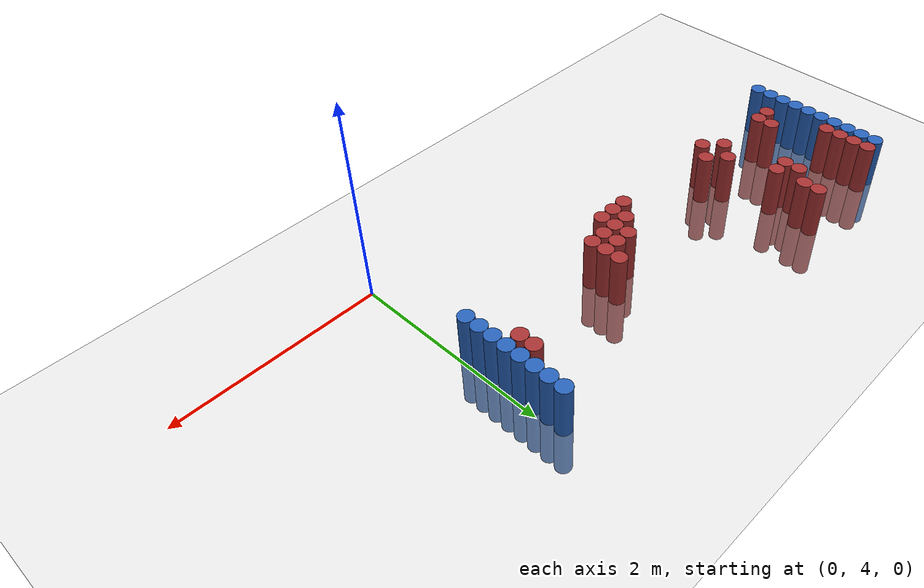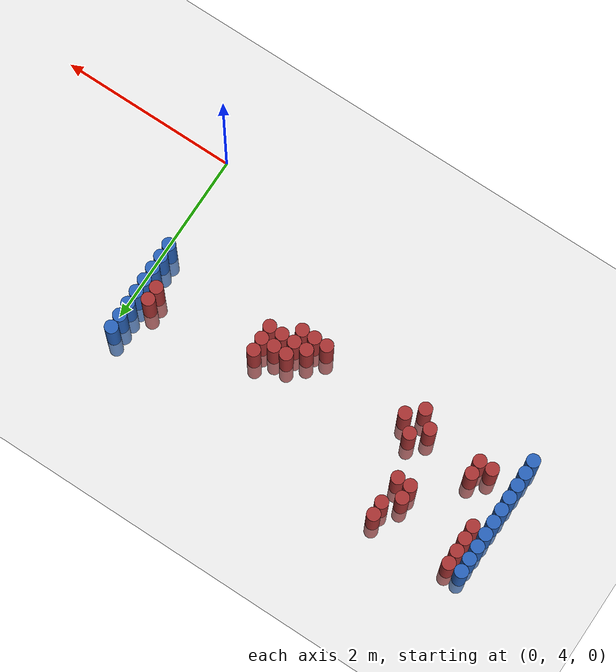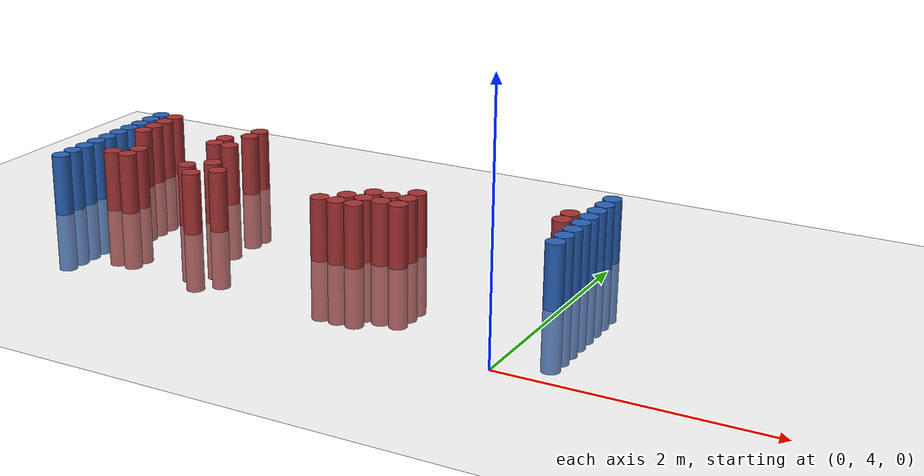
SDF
<sdf version="1.6">
 <world name="default">
  <model name="ground_plane">
   <static>1</static>
   <link name="link">
    <collision name="collision">
     <geometry><plane><normal>0 0 1</normal><size>100 100</size></plane></geometry>
     <surface><friction><ode><mu>100</mu><mu2>50</mu2></ode></friction></surface>
    </collision>
    <visual name="visual">
     <cast_shadows>0</cast_shadows>
     <geometry><plane><normal>0 0 1</normal><size>100 100</size></plane></geometry>
     <material>
      <script><uri>file://media/materials/scripts/gazebo.material</uri><name>Gazebo/Grey</name></script>
     </material>
    </visual>
   </link>
  </model>
  <model name="unit_cylinder_95">
   <static>1</static>
   <pose>-4.425000 5.025000 0.000000 0.000000 0.000000 0.000000</pose>
   <link name="link">
    <inertial>
     <mass>1</mass>
     <inertia><ixx>0.145833</ixx><ixy>0</ixy><ixz>0</ixz><iyy>0.145833</iyy><iyz>0</iyz><izz>0.125</izz></inertia>
    </inertial>
    <collision name="collision">
     <geometry><cylinder><radius>0.075000</radius><length>1</length></cylinder></geometry>
    </collision>
    <visual name="visual">
     <geometry><cylinder><radius>0.075000</radius><length>1</length></cylinder></geometry>
     <material>
      <ambient>0.152000 0.379000 0.720000 1</ambient>
      <diffuse>0.152000 0.379000 0.720000 1</diffuse>
     </material>
     <material>
      <script><name>Gazebo/Grey</name><uri>file://media/materials/scripts/gazebo.material</uri></script>
     </material>
    </visual>
   </link>
  </model>
  <model name="unit_cylinder_96">
   <static>1</static>
   <pose>-4.425000 5.175000 0.000000 0.000000 0.000000 0.000000</pose>
   <link name="link">
    <inertial>
     <mass>1</mass>
     <inertia><ixx>0.145833</ixx><ixy>0</ixy><ixz>0</ixz><iyy>0.145833</iyy><iyz>0</iyz><izz>0.125</izz></inertia>
    </inertial>
    <collision name="collision">
     <geometry><cylinder><radius>0.075000</radius><length>1</length></cylinder></geometry>
    </collision>
    <visual name="visual">
     <geometry><cylinder><radius>0.075000</radius><length>1</length></cylinder></geometry>
     <material>
      <ambient>0.152000 0.379000 0.720000 1</ambient>
      <diffuse>0.152000 0.379000 0.720000 1</diffuse>
     </material>
     <material>
      <script><name>Gazebo/Grey</name><uri>file://media/materials/scripts/gazebo.material</uri></script>
     </material>
    </visual>
   </link>
  </model>
  <model name="unit_cylinder_97">
   <static>1</static>
   <pose>-4.425000 5.325000 0.000000 0.000000 0.000000 0.000000</pose>
   <link name="link">
    <inertial>
     <mass>1</mass>
     <inertia><ixx>0.145833</ixx><ixy>0</ixy><ixz>0</ixz><iyy>0.145833</iyy><iyz>0</iyz><izz>0.125</izz></inertia>
    </inertial>
    <collision name="collision">
     <geometry><cylinder><radius>0.075000</radius><length>1</length></cylinder></geometry>
    </collision>
    <visual name="visual">
     <geometry><cylinder><radius>0.075000</radius><length>1</length></cylinder></geometry>
     <material>
      <ambient>0.152000 0.379000 0.720000 1</ambient>
      <diffuse>0.152000 0.379000 0.720000 1</diffuse>
     </material>
     <material>
      <script><name>Gazebo/Grey</name><uri>file://media/materials/scripts/gazebo.material</uri></script>
     </material>
    </visual>
   </link>
  </model>
  <model name="unit_cylinder_98">
   <static>1</static>
   <pose>-4.425000 5.475000 0.000000 0.000000 0.000000 0.000000</pose>
   <link name="link">
    <inertial>
     <mass>1</mass>
     <inertia><ixx>0.145833</ixx><ixy>0</ixy><ixz>0</ixz><iyy>0.145833</iyy><iyz>0</iyz><izz>0.125</izz></inertia>
    </inertial>
    <collision name="collision">
     <geometry><cylinder><radius>0.075000</radius><length>1</length></cylinder></geometry>
    </collision>
    <visual name="visual">
     <geometry><cylinder><radius>0.075000</radius><length>1</length></cylinder></geometry>
     <material>
      <ambient>0.152000 0.379000 0.720000 1</ambient>
      <diffuse>0.152000 0.379000 0.720000 1</diffuse>
     </material>
     <material>
      <script><name>Gazebo/Grey</name><uri>file://media/materials/scripts/gazebo.material</uri></script>
     </material>
    </visual>
   </link>
  </model>
  <model name="unit_cylinder_99">
   <static>1</static>
   <pose>-4.425000 5.625000 0.000000 0.000000 0.000000 0.000000</pose>
   <link name="link">
    <inertial>
     <mass>1</mass>
     <inertia><ixx>0.145833</ixx><ixy>0</ixy><ixz>0</ixz><iyy>0.145833</iyy><iyz>0</iyz><izz>0.125</izz></inertia>
    </inertial>
    <collision name="collision">
     <geometry><cylinder><radius>0.075000</radius><length>1</length></cylinder></geometry>
    </collision>
    <visual name="visual">
     <geometry><cylinder><radius>0.075000</radius><length>1</length></cylinder></geometry>
     <material>
      <ambient>0.152000 0.379000 0.720000 1</ambient>
      <diffuse>0.152000 0.379000 0.720000 1</diffuse>
     </material>
     <material>
      <script><name>Gazebo/Grey</name><uri>file://media/materials/scripts/gazebo.material</uri></script>
     </material>
    </visual>
   </link>
  </model>
  <model name="unit_cylinder_100">
   <static>1</static>
   <pose>-4.425000 5.775000 0.000000 0.000000 0.000000 0.000000</pose>
   <link name="link">
    <inertial>
     <mass>1</mass>
     <inertia><ixx>0.145833</ixx><ixy>0</ixy><ixz>0</ixz><iyy>0.145833</iyy><iyz>0</iyz><izz>0.125</izz></inertia>
    </inertial>
    <collision name="collision">
     <geometry><cylinder><radius>0.075000</radius><length>1</length></cylinder></geometry>
    </collision>
    <visual name="visual">
     <geometry><cylinder><radius>0.075000</radius><length>1</length></cylinder></geometry>
     <material>
      <ambient>0.152000 0.379000 0.720000 1</ambient>
      <diffuse>0.152000 0.379000 0.720000 1</diffuse>
     </material>
     <material>
      <script><name>Gazebo/Grey</name><uri>file://media/materials/scripts/gazebo.material</uri></script>
     </material>
    </visual>
   </link>
  </model>
  <model name="unit_cylinder_101">
   <static>1</static>
   <pose>-4.425000 5.925000 0.000000 0.000000 0.000000 0.000000</pose>
   <link name="link">
    <inertial>
     <mass>1</mass>
     <inertia><ixx>0.145833</ixx><ixy>0</ixy><ixz>0</ixz><iyy>0.145833</iyy><iyz>0</iyz><izz>0.125</izz></inertia>
    </inertial>
    <collision name="collision">
     <geometry><cylinder><radius>0.075000</radius><length>1</length></cylinder></geometry>
    </collision>
    <visual name="visual">
     <geometry><cylinder><radius>0.075000</radius><length>1</length></cylinder></geometry>
     <material>
      <ambient>0.152000 0.379000 0.720000 1</ambient>
      <diffuse>0.152000 0.379000 0.720000 1</diffuse>
     </material>
     <material>
      <script><name>Gazebo/Grey</name><uri>file://media/materials/scripts/gazebo.material</uri></script>
     </material>
    </visual>
   </link>
  </model>
  <model name="unit_cylinder_102">
   <static>1</static>
   <pose>-4.425000 6.075000 0.000000 0.000000 0.000000 0.000000</pose>
   <link name="link">
    <inertial>
     <mass>1</mass>
     <inertia><ixx>0.145833</ixx><ixy>0</ixy><ixz>0</ixz><iyy>0.145833</iyy><iyz>0</iyz><izz>0.125</izz></inertia>
    </inertial>
    <collision name="collision">
     <geometry><cylinder><radius>0.075000</radius><length>1</length></cylinder></geometry>
    </collision>
    <visual name="visual">
     <geometry><cylinder><radius>0.075000</radius><length>1</length></cylinder></geometry>
     <material>
      <ambient>0.152000 0.379000 0.720000 1</ambient>
      <diffuse>0.152000 0.379000 0.720000 1</diffuse>
     </material>
     <material>
      <script><name>Gazebo/Grey</name><uri>file://media/materials/scripts/gazebo.material</uri></script>
     </material>
    </visual>
   </link>
  </model>
  <model name="unit_cylinder_103">
   <static>1</static>
   <pose>-4.425000 6.225000 0.000000 0.000000 0.000000 0.000000</pose>
   <link name="link">
    <inertial>
     <mass>1</mass>
     <inertia><ixx>0.145833</ixx><ixy>0</ixy><ixz>0</ixz><iyy>0.145833</iyy><iyz>0</iyz><izz>0.125</izz></inertia>
    </inertial>
    <collision name="collision">
     <geometry><cylinder><radius>0.075000</radius><length>1</length></cylinder></geometry>
    </collision>
    <visual name="visual">
     <geometry><cylinder><radius>0.075000</radius><length>1</length></cylinder></geometry>
     <material>
      <ambient>0.152000 0.379000 0.720000 1</ambient>
      <diffuse>0.152000 0.379000 0.720000 1</diffuse>
     </material>
     <material>
      <script><name>Gazebo/Grey</name><uri>file://media/materials/scripts/gazebo.material</uri></script>
     </material>
    </visual>
   </link>
  </model>
  <model name="unit_cylinder_104">
   <static>1</static>
   <pose>-4.425000 6.375000 0.000000 0.000000 0.000000 0.000000</pose>
   <link name="link">
    <inertial>
     <mass>1</mass>
     <inertia><ixx>0.145833</ixx><ixy>0</ixy><ixz>0</ixz><iyy>0.145833</iyy><iyz>0</iyz><izz>0.125</izz></inertia>
    </inertial>
    <collision name="collision">
     <geometry><cylinder><radius>0.075000</radius><length>1</length></cylinder></geometry>
    </collision>
    <visual name="visual">
     <geometry><cylinder><radius>0.075000</radius><length>1</length></cylinder></geometry>
     <material>
      <ambient>0.152000 0.379000 0.720000 1</ambient>
      <diffuse>0.152000 0.379000 0.720000 1</diffuse>
     </material>
     <material>
      <script><name>Gazebo/Grey</name><uri>file://media/materials/scripts/gazebo.material</uri></script>
     </material>
    </visual>
   </link>
  </model>
  <model name="unit_cylinder_126">
   <static>1</static>
   <pose>-4.275000 5.925000 0.000000 0.000000 0.000000 0.000000</pose>
   <link name="link">
    <inertial>
     <mass>1</mass>
     <inertia><ixx>0.145833</ixx><ixy>0</ixy><ixz>0</ixz><iyy>0.145833</iyy><iyz>0</iyz><izz>0.125</izz></inertia>
    </inertial>
    <collision name="collision">
     <geometry><cylinder><radius>0.075000</radius><length>1</length></cylinder></geometry>
    </collision>
    <visual name="visual">
     <geometry><cylinder><radius>0.075000</radius><length>1</length></cylinder></geometry>
     <material>
      <ambient>0.648000 0.192000 0.192000 1</ambient>
      <diffuse>0.648000 0.192000 0.192000 1</diffuse>
     </material>
     <material>
      <script><name>Gazebo/Grey</name><uri>file://media/materials/scripts/gazebo.material</uri></script>
     </material>
    </visual>
   </link>
  </model>
  <model name="unit_cylinder_127">
   <static>1</static>
   <pose>-4.275000 6.075000 0.000000 0.000000 0.000000 0.000000</pose>
   <link name="link">
    <inertial>
     <mass>1</mass>
     <inertia><ixx>0.145833</ixx><ixy>0</ixy><ixz>0</ixz><iyy>0.145833</iyy><iyz>0</iyz><izz>0.125</izz></inertia>
    </inertial>
    <collision name="collision">
     <geometry><cylinder><radius>0.075000</radius><length>1</length></cylinder></geometry>
    </collision>
    <visual name="visual">
     <geometry><cylinder><radius>0.075000</radius><length>1</length></cylinder></geometry>
     <material>
      <ambient>0.648000 0.192000 0.192000 1</ambient>
      <diffuse>0.648000 0.192000 0.192000 1</diffuse>
     </material>
     <material>
      <script><name>Gazebo/Grey</name><uri>file://media/materials/scripts/gazebo.material</uri></script>
     </material>
    </visual>
   </link>
  </model>
  <model name="unit_cylinder_128">
   <static>1</static>
   <pose>-4.275000 6.225000 0.000000 0.000000 0.000000 0.000000</pose>
   <link name="link">
    <inertial>
     <mass>1</mass>
     <inertia><ixx>0.145833</ixx><ixy>0</ixy><ixz>0</ixz><iyy>0.145833</iyy><iyz>0</iyz><izz>0.125</izz></inertia>
    </inertial>
    <collision name="collision">
     <geometry><cylinder><radius>0.075000</radius><length>1</length></cylinder></geometry>
    </collision>
    <visual name="visual">
     <geometry><cylinder><radius>0.075000</radius><length>1</length></cylinder></geometry>
     <material>
      <ambient>0.648000 0.192000 0.192000 1</ambient>
      <diffuse>0.648000 0.192000 0.192000 1</diffuse>
     </material>
     <material>
      <script><name>Gazebo/Grey</name><uri>file://media/materials/scripts/gazebo.material</uri></script>
     </material>
    </visual>
   </link>
  </model>
  <model name="unit_cylinder_129">
   <static>1</static>
   <pose>-4.275000 6.375000 0.000000 0.000000 0.000000 0.000000</pose>
   <link name="link">
    <inertial>
     <mass>1</mass>
     <inertia><ixx>0.145833</ixx><ixy>0</ixy><ixz>0</ixz><iyy>0.145833</iyy><iyz>0</iyz><izz>0.125</izz></inertia>
    </inertial>
    <collision name="collision">
     <geometry><cylinder><radius>0.075000</radius><length>1</length></cylinder></geometry>
    </collision>
    <visual name="visual">
     <geometry><cylinder><radius>0.075000</radius><length>1</length></cylinder></geometry>
     <material>
      <ambient>0.648000 0.192000 0.192000 1</ambient>
      <diffuse>0.648000 0.192000 0.192000 1</diffuse>
     </material>
     <material>
      <script><name>Gazebo/Grey</name><uri>file://media/materials/scripts/gazebo.material</uri></script>
     </material>
    </visual>
   </link>
  </model>
  <model name="unit_cylinder_142">
   <static>1</static>
   <pose>-4.125000 5.325000 0.000000 0.000000 0.000000 0.000000</pose>
   <link name="link">
    <inertial>
     <mass>1</mass>
     <inertia><ixx>0.145833</ixx><ixy>0</ixy><ixz>0</ixz><iyy>0.145833</iyy><iyz>0</iyz><izz>0.125</izz></inertia>
    </inertial>
    <collision name="collision">
     <geometry><cylinder><radius>0.075000</radius><length>1</length></cylinder></geometry>
    </collision>
    <visual name="visual">
     <geometry><cylinder><radius>0.075000</radius><length>1</length></cylinder></geometry>
     <material>
      <ambient>0.648000 0.192000 0.192000 1</ambient>
      <diffuse>0.648000 0.192000 0.192000 1</diffuse>
     </material>
     <material>
      <script><name>Gazebo/Grey</name><uri>file://media/materials/scripts/gazebo.material</uri></script>
     </material>
    </visual>
   </link>
  </model>
  <model name="unit_cylinder_146">
   <static>1</static>
   <pose>-3.975000 5.325000 0.000000 0.000000 0.000000 0.000000</pose>
   <link name="link">
    <inertial>
     <mass>1</mass>
     <inertia><ixx>0.145833</ixx><ixy>0</ixy><ixz>0</ixz><iyy>0.145833</iyy><iyz>0</iyz><izz>0.125</izz></inertia>
    </inertial>
    <collision name="collision">
     <geometry><cylinder><radius>0.075000</radius><length>1</length></cylinder></geometry>
    </collision>
    <visual name="visual">
     <geometry><cylinder><radius>0.075000</radius><length>1</length></cylinder></geometry>
     <material>
      <ambient>0.648000 0.192000 0.192000 1</ambient>
      <diffuse>0.648000 0.192000 0.192000 1</diffuse>
     </material>
     <material>
      <script><name>Gazebo/Grey</name><uri>file://media/materials/scripts/gazebo.material</uri></script>
     </material>
    </visual>
   </link>
  </model>
  <model name="unit_cylinder_147">
   <static>1</static>
   <pose>-3.975000 5.475000 0.000000 0.000000 0.000000 0.000000</pose>
   <link name="link">
    <inertial>
     <mass>1</mass>
     <inertia><ixx>0.145833</ixx><ixy>0</ixy><ixz>0</ixz><iyy>0.145833</iyy><iyz>0</iyz><izz>0.125</izz></inertia>
    </inertial>
    <collision name="collision">
     <geometry><cylinder><radius>0.075000</radius><length>1</length></cylinder></geometry>
    </collision>
    <visual name="visual">
     <geometry><cylinder><radius>0.075000</radius><length>1</length></cylinder></geometry>
     <material>
      <ambient>0.648000 0.192000 0.192000 1</ambient>
      <diffuse>0.648000 0.192000 0.192000 1</diffuse>
     </material>
     <material>
      <script><name>Gazebo/Grey</name><uri>file://media/materials/scripts/gazebo.material</uri></script>
     </material>
    </visual>
   </link>
  </model>
  <model name="unit_cylinder_149">
   <static>1</static>
   <pose>-3.525000 5.925000 0.000000 0.000000 0.000000 0.000000</pose>
   <link name="link">
    <inertial>
     <mass>1</mass>
     <inertia><ixx>0.145833</ixx><ixy>0</ixy><ixz>0</ixz><iyy>0.145833</iyy><iyz>0</iyz><izz>0.125</izz></inertia>
    </inertial>
    <collision name="collision">
     <geometry><cylinder><radius>0.075000</radius><length>1</length></cylinder></geometry>
    </collision>
    <visual name="visual">
     <geometry><cylinder><radius>0.075000</radius><length>1</length></cylinder></geometry>
     <material>
      <ambient>0.648000 0.192000 0.192000 1</ambient>
      <diffuse>0.648000 0.192000 0.192000 1</diffuse>
     </material>
     <material>
      <script><name>Gazebo/Grey</name><uri>file://media/materials/scripts/gazebo.material</uri></script>
     </material>
    </visual>
   </link>
  </model>
  <model name="unit_cylinder_150">
   <static>1</static>
   <pose>-3.525000 6.075000 0.000000 0.000000 0.000000 0.000000</pose>
   <link name="link">
    <inertial>
     <mass>1</mass>
     <inertia><ixx>0.145833</ixx><ixy>0</ixy><ixz>0</ixz><iyy>0.145833</iyy><iyz>0</iyz><izz>0.125</izz></inertia>
    </inertial>
    <collision name="collision">
     <geometry><cylinder><radius>0.075000</radius><length>1</length></cylinder></geometry>
    </collision>
    <visual name="visual">
     <geometry><cylinder><radius>0.075000</radius><length>1</length></cylinder></geometry>
     <material>
      <ambient>0.648000 0.192000 0.192000 1</ambient>
      <diffuse>0.648000 0.192000 0.192000 1</diffuse>
     </material>
     <material>
      <script><name>Gazebo/Grey</name><uri>file://media/materials/scripts/gazebo.material</uri></script>
     </material>
    </visual>
   </link>
  </model>
  <model name="unit_cylinder_154">
   <static>1</static>
   <pose>-3.375000 5.325000 0.000000 0.000000 0.000000 0.000000</pose>
   <link name="link">
    <inertial>
     <mass>1</mass>
     <inertia><ixx>0.145833</ixx><ixy>0</ixy><ixz>0</ixz><iyy>0.145833</iyy><iyz>0</iyz><izz>0.125</izz></inertia>
    </inertial>
    <collision name="collision">
     <geometry><cylinder><radius>0.075000</radius><length>1</length></cylinder></geometry>
    </collision>
    <visual name="visual">
     <geometry><cylinder><radius>0.075000</radius><length>1</length></cylinder></geometry>
     <material>
      <ambient>0.648000 0.192000 0.192000 1</ambient>
      <diffuse>0.648000 0.192000 0.192000 1</diffuse>
     </material>
     <material>
      <script><name>Gazebo/Grey</name><uri>file://media/materials/scripts/gazebo.material</uri></script>
     </material>
    </visual>
   </link>
  </model>
  <model name="unit_cylinder_155">
   <static>1</static>
   <pose>-3.375000 5.925000 0.000000 0.000000 0.000000 0.000000</pose>
   <link name="link">
    <inertial>
     <mass>1</mass>
     <inertia><ixx>0.145833</ixx><ixy>0</ixy><ixz>0</ixz><iyy>0.145833</iyy><iyz>0</iyz><izz>0.125</izz></inertia>
    </inertial>
    <collision name="collision">
     <geometry><cylinder><radius>0.075000</radius><length>1</length></cylinder></geometry>
    </collision>
    <visual name="visual">
     <geometry><cylinder><radius>0.075000</radius><length>1</length></cylinder></geometry>
     <material>
      <ambient>0.648000 0.192000 0.192000 1</ambient>
      <diffuse>0.648000 0.192000 0.192000 1</diffuse>
     </material>
     <material>
      <script><name>Gazebo/Grey</name><uri>file://media/materials/scripts/gazebo.material</uri></script>
     </material>
    </visual>
   </link>
  </model>
  <model name="unit_cylinder_156">
   <static>1</static>
   <pose>-3.375000 6.225000 0.000000 0.000000 0.000000 0.000000</pose>
   <link name="link">
    <inertial>
     <mass>1</mass>
     <inertia><ixx>0.145833</ixx><ixy>0</ixy><ixz>0</ixz><iyy>0.145833</iyy><iyz>0</iyz><izz>0.125</izz></inertia>
    </inertial>
    <collision name="collision">
     <geometry><cylinder><radius>0.075000</radius><length>1</length></cylinder></geometry>
    </collision>
    <visual name="visual">
     <geometry><cylinder><radius>0.075000</radius><length>1</length></cylinder></geometry>
     <material>
      <ambient>0.648000 0.192000 0.192000 1</ambient>
      <diffuse>0.648000 0.192000 0.192000 1</diffuse>
     </material>
     <material>
      <script><name>Gazebo/Grey</name><uri>file://media/materials/scripts/gazebo.material</uri></script>
     </material>
    </visual>
   </link>
  </model>
  <model name="unit_cylinder_157">
   <static>1</static>
   <pose>-3.375000 6.375000 0.000000 0.000000 0.000000 0.000000</pose>
   <link name="link">
    <inertial>
     <mass>1</mass>
     <inertia><ixx>0.145833</ixx><ixy>0</ixy><ixz>0</ixz><iyy>0.145833</iyy><iyz>0</iyz><izz>0.125</izz></inertia>
    </inertial>
    <collision name="collision">
     <geometry><cylinder><radius>0.075000</radius><length>1</length></cylinder></geometry>
    </collision>
    <visual name="visual">
     <geometry><cylinder><radius>0.075000</radius><length>1</length></cylinder></geometry>
     <material>
      <ambient>0.648000 0.192000 0.192000 1</ambient>
      <diffuse>0.648000 0.192000 0.192000 1</diffuse>
     </material>
     <material>
      <script><name>Gazebo/Grey</name><uri>file://media/materials/scripts/gazebo.material</uri></script>
     </material>
    </visual>
   </link>
  </model>
  <model name="unit_cylinder_160">
   <static>1</static>
   <pose>-3.225000 5.175000 0.000000 0.000000 0.000000 0.000000</pose>
   <link name="link">
    <inertial>
     <mass>1</mass>
     <inertia><ixx>0.145833</ixx><ixy>0</ixy><ixz>0</ixz><iyy>0.145833</iyy><iyz>0</iyz><izz>0.125</izz></inertia>
    </inertial>
    <collision name="collision">
     <geometry><cylinder><radius>0.075000</radius><length>1</length></cylinder></geometry>
    </collision>
    <visual name="visual">
     <geometry><cylinder><radius>0.075000</radius><length>1</length></cylinder></geometry>
     <material>
      <ambient>0.648000 0.192000 0.192000 1</ambient>
      <diffuse>0.648000 0.192000 0.192000 1</diffuse>
     </material>
     <material>
      <script><name>Gazebo/Grey</name><uri>file://media/materials/scripts/gazebo.material</uri></script>
     </material>
    </visual>
   </link>
  </model>
  <model name="unit_cylinder_161">
   <static>1</static>
   <pose>-3.225000 5.475000 0.000000 0.000000 0.000000 0.000000</pose>
   <link name="link">
    <inertial>
     <mass>1</mass>
     <inertia><ixx>0.145833</ixx><ixy>0</ixy><ixz>0</ixz><iyy>0.145833</iyy><iyz>0</iyz><izz>0.125</izz></inertia>
    </inertial>
    <collision name="collision">
     <geometry><cylinder><radius>0.075000</radius><length>1</length></cylinder></geometry>
    </collision>
    <visual name="visual">
     <geometry><cylinder><radius>0.075000</radius><length>1</length></cylinder></geometry>
     <material>
      <ambient>0.648000 0.192000 0.192000 1</ambient>
      <diffuse>0.648000 0.192000 0.192000 1</diffuse>
     </material>
     <material>
      <script><name>Gazebo/Grey</name><uri>file://media/materials/scripts/gazebo.material</uri></script>
     </material>
    </visual>
   </link>
  </model>
  <model name="unit_cylinder_168">
   <static>1</static>
   <pose>-3.075000 5.325000 0.000000 0.000000 0.000000 0.000000</pose>
   <link name="link">
    <inertial>
     <mass>1</mass>
     <inertia><ixx>0.145833</ixx><ixy>0</ixy><ixz>0</ixz><iyy>0.145833</iyy><iyz>0</iyz><izz>0.125</izz></inertia>
    </inertial>
    <collision name="collision">
     <geometry><cylinder><radius>0.075000</radius><length>1</length></cylinder></geometry>
    </collision>
    <visual name="visual">
     <geometry><cylinder><radius>0.075000</radius><length>1</length></cylinder></geometry>
     <material>
      <ambient>0.648000 0.192000 0.192000 1</ambient>
      <diffuse>0.648000 0.192000 0.192000 1</diffuse>
     </material>
     <material>
      <script><name>Gazebo/Grey</name><uri>file://media/materials/scripts/gazebo.material</uri></script>
     </material>
    </visual>
   </link>
  </model>
  <model name="unit_cylinder_172">
   <static>1</static>
   <pose>-2.025000 5.175000 0.000000 0.000000 0.000000 0.000000</pose>
   <link name="link">
    <inertial>
     <mass>1</mass>
     <inertia><ixx>0.145833</ixx><ixy>0</ixy><ixz>0</ixz><iyy>0.145833</iyy><iyz>0</iyz><izz>0.125</izz></inertia>
    </inertial>
    <collision name="collision">
     <geometry><cylinder><radius>0.075000</radius><length>1</length></cylinder></geometry>
    </collision>
    <visual name="visual">
     <geometry><cylinder><radius>0.075000</radius><length>1</length></cylinder></geometry>
     <material>
      <ambient>0.648000 0.192000 0.192000 1</ambient>
      <diffuse>0.648000 0.192000 0.192000 1</diffuse>
     </material>
     <material>
      <script><name>Gazebo/Grey</name><uri>file://media/materials/scripts/gazebo.material</uri></script>
     </material>
    </visual>
   </link>
  </model>
  <model name="unit_cylinder_178">
   <static>1</static>
   <pose>-1.875000 5.175000 0.000000 0.000000 0.000000 0.000000</pose>
   <link name="link">
    <inertial>
     <mass>1</mass>
     <inertia><ixx>0.145833</ixx><ixy>0</ixy><ixz>0</ixz><iyy>0.145833</iyy><iyz>0</iyz><izz>0.125</izz></inertia>
    </inertial>
    <collision name="collision">
     <geometry><cylinder><radius>0.075000</radius><length>1</length></cylinder></geometry>
    </collision>
    <visual name="visual">
     <geometry><cylinder><radius>0.075000</radius><length>1</length></cylinder></geometry>
     <material>
      <ambient>0.648000 0.192000 0.192000 1</ambient>
      <diffuse>0.648000 0.192000 0.192000 1</diffuse>
     </material>
     <material>
      <script><name>Gazebo/Grey</name><uri>file://media/materials/scripts/gazebo.material</uri></script>
     </material>
    </visual>
   </link>
  </model>
  <model name="unit_cylinder_179">
   <static>1</static>
   <pose>-1.875000 5.325000 0.000000 0.000000 0.000000 0.000000</pose>
   <link name="link">
    <inertial>
     <mass>1</mass>
     <inertia><ixx>0.145833</ixx><ixy>0</ixy><ixz>0</ixz><iyy>0.145833</iyy><iyz>0</iyz><izz>0.125</izz></inertia>
    </inertial>
    <collision name="collision">
     <geometry><cylinder><radius>0.075000</radius><length>1</length></cylinder></geometry>
    </collision>
    <visual name="visual">
     <geometry><cylinder><radius>0.075000</radius><length>1</length></cylinder></geometry>
     <material>
      <ambient>0.648000 0.192000 0.192000 1</ambient>
      <diffuse>0.648000 0.192000 0.192000 1</diffuse>
     </material>
     <material>
      <script><name>Gazebo/Grey</name><uri>file://media/materials/scripts/gazebo.material</uri></script>
     </material>
    </visual>
   </link>
  </model>
  <model name="unit_cylinder_184">
   <static>1</static>
   <pose>-1.725000 5.175000 0.000000 0.000000 0.000000 0.000000</pose>
   <link name="link">
    <inertial>
     <mass>1</mass>
     <inertia><ixx>0.145833</ixx><ixy>0</ixy><ixz>0</ixz><iyy>0.145833</iyy><iyz>0</iyz><izz>0.125</izz></inertia>
    </inertial>
    <collision name="collision">
     <geometry><cylinder><radius>0.075000</radius><length>1</length></cylinder></geometry>
    </collision>
    <visual name="visual">
     <geometry><cylinder><radius>0.075000</radius><length>1</length></cylinder></geometry>
     <material>
      <ambient>0.648000 0.192000 0.192000 1</ambient>
      <diffuse>0.648000 0.192000 0.192000 1</diffuse>
     </material>
     <material>
      <script><name>Gazebo/Grey</name><uri>file://media/materials/scripts/gazebo.material</uri></script>
     </material>
    </visual>
   </link>
  </model>
  <model name="unit_cylinder_185">
   <static>1</static>
   <pose>-1.725000 5.325000 0.000000 0.000000 0.000000 0.000000</pose>
   <link name="link">
    <inertial>
     <mass>1</mass>
     <inertia><ixx>0.145833</ixx><ixy>0</ixy><ixz>0</ixz><iyy>0.145833</iyy><iyz>0</iyz><izz>0.125</izz></inertia>
    </inertial>
    <collision name="collision">
     <geometry><cylinder><radius>0.075000</radius><length>1</length></cylinder></geometry>
    </collision>
    <visual name="visual">
     <geometry><cylinder><radius>0.075000</radius><length>1</length></cylinder></geometry>
     <material>
      <ambient>0.648000 0.192000 0.192000 1</ambient>
      <diffuse>0.648000 0.192000 0.192000 1</diffuse>
     </material>
     <material>
      <script><name>Gazebo/Grey</name><uri>file://media/materials/scripts/gazebo.material</uri></script>
     </material>
    </visual>
   </link>
  </model>
  <model name="unit_cylinder_186">
   <static>1</static>
   <pose>-1.725000 5.475000 0.000000 0.000000 0.000000 0.000000</pose>
   <link name="link">
    <inertial>
     <mass>1</mass>
     <inertia><ixx>0.145833</ixx><ixy>0</ixy><ixz>0</ixz><iyy>0.145833</iyy><iyz>0</iyz><izz>0.125</izz></inertia>
    </inertial>
    <collision name="collision">
     <geometry><cylinder><radius>0.075000</radius><length>1</length></cylinder></geometry>
    </collision>
    <visual name="visual">
     <geometry><cylinder><radius>0.075000</radius><length>1</length></cylinder></geometry>
     <material>
      <ambient>0.648000 0.192000 0.192000 1</ambient>
      <diffuse>0.648000 0.192000 0.192000 1</diffuse>
     </material>
     <material>
      <script><name>Gazebo/Grey</name><uri>file://media/materials/scripts/gazebo.material</uri></script>
     </material>
    </visual>
   </link>
  </model>
  <model name="unit_cylinder_187">
   <static>1</static>
   <pose>-1.575000 5.325000 0.000000 0.000000 0.000000 0.000000</pose>
   <link name="link">
    <inertial>
     <mass>1</mass>
     <inertia><ixx>0.145833</ixx><ixy>0</ixy><ixz>0</ixz><iyy>0.145833</iyy><iyz>0</iyz><izz>0.125</izz></inertia>
    </inertial>
    <collision name="collision">
     <geometry><cylinder><radius>0.075000</radius><length>1</length></cylinder></geometry>
    </collision>
    <visual name="visual">
     <geometry><cylinder><radius>0.075000</radius><length>1</length></cylinder></geometry>
     <material>
      <ambient>0.648000 0.192000 0.192000 1</ambient>
      <diffuse>0.648000 0.192000 0.192000 1</diffuse>
     </material>
     <material>
      <script><name>Gazebo/Grey</name><uri>file://media/materials/scripts/gazebo.material</uri></script>
     </material>
    </visual>
   </link>
  </model>
  <model name="unit_cylinder_188">
   <static>1</static>
   <pose>-1.575000 5.475000 0.000000 0.000000 0.000000 0.000000</pose>
   <link name="link">
    <inertial>
     <mass>1</mass>
     <inertia><ixx>0.145833</ixx><ixy>0</ixy><ixz>0</ixz><iyy>0.145833</iyy><iyz>0</iyz><izz>0.125</izz></inertia>
    </inertial>
    <collision name="collision">
     <geometry><cylinder><radius>0.075000</radius><length>1</length></cylinder></geometry>
    </collision>
    <visual name="visual">
     <geometry><cylinder><radius>0.075000</radius><length>1</length></cylinder></geometry>
     <material>
      <ambient>0.648000 0.192000 0.192000 1</ambient>
      <diffuse>0.648000 0.192000 0.192000 1</diffuse>
     </material>
     <material>
      <script><name>Gazebo/Grey</name><uri>file://media/materials/scripts/gazebo.material</uri></script>
     </material>
    </visual>
   </link>
  </model>
  <model name="unit_cylinder_189">
   <static>1</static>
   <pose>-1.425000 5.325000 0.000000 0.000000 0.000000 0.000000</pose>
   <link name="link">
    <inertial>
     <mass>1</mass>
     <inertia><ixx>0.145833</ixx><ixy>0</ixy><ixz>0</ixz><iyy>0.145833</iyy><iyz>0</iyz><izz>0.125</izz></inertia>
    </inertial>
    <collision name="collision">
     <geometry><cylinder><radius>0.075000</radius><length>1</length></cylinder></geometry>
    </collision>
    <visual name="visual">
     <geometry><cylinder><radius>0.075000</radius><length>1</length></cylinder></geometry>
     <material>
      <ambient>0.648000 0.192000 0.192000 1</ambient>
      <diffuse>0.648000 0.192000 0.192000 1</diffuse>
     </material>
     <material>
      <script><name>Gazebo/Grey</name><uri>file://media/materials/scripts/gazebo.material</uri></script>
     </material>
    </visual>
   </link>
  </model>
  <model name="unit_cylinder_190">
   <static>1</static>
   <pose>-1.425000 5.475000 0.000000 0.000000 0.000000 0.000000</pose>
   <link name="link">
    <inertial>
     <mass>1</mass>
     <inertia><ixx>0.145833</ixx><ixy>0</ixy><ixz>0</ixz><iyy>0.145833</iyy><iyz>0</iyz><izz>0.125</izz></inertia>
    </inertial>
    <collision name="collision">
     <geometry><cylinder><radius>0.075000</radius><length>1</length></cylinder></geometry>
    </collision>
    <visual name="visual">
     <geometry><cylinder><radius>0.075000</radius><length>1</length></cylinder></geometry>
     <material>
      <ambient>0.648000 0.192000 0.192000 1</ambient>
      <diffuse>0.648000 0.192000 0.192000 1</diffuse>
     </material>
     <material>
      <script><name>Gazebo/Grey</name><uri>file://media/materials/scripts/gazebo.material</uri></script>
     </material>
    </visual>
   </link>
  </model>
  <model name="unit_cylinder_191">
   <static>1</static>
   <pose>-1.425000 5.625000 0.000000 0.000000 0.000000 0.000000</pose>
   <link name="link">
    <inertial>
     <mass>1</mass>
     <inertia><ixx>0.145833</ixx><ixy>0</ixy><ixz>0</ixz><iyy>0.145833</iyy><iyz>0</iyz><izz>0.125</izz></inertia>
    </inertial>
    <collision name="collision">
     <geometry><cylinder><radius>0.075000</radius><length>1</length></cylinder></geometry>
    </collision>
    <visual name="visual">
     <geometry><cylinder><radius>0.075000</radius><length>1</length></cylinder></geometry>
     <material>
      <ambient>0.648000 0.192000 0.192000 1</ambient>
      <diffuse>0.648000 0.192000 0.192000 1</diffuse>
     </material>
     <material>
      <script><name>Gazebo/Grey</name><uri>file://media/materials/scripts/gazebo.material</uri></script>
     </material>
    </visual>
   </link>
  </model>
  <model name="unit_cylinder_197">
   <static>1</static>
   <pose>-0.225000 5.625000 0.000000 0.000000 0.000000 0.000000</pose>
   <link name="link">
    <inertial>
     <mass>1</mass>
     <inertia><ixx>0.145833</ixx><ixy>0</ixy><ixz>0</ixz><iyy>0.145833</iyy><iyz>0</iyz><izz>0.125</izz></inertia>
    </inertial>
    <collision name="collision">
     <geometry><cylinder><radius>0.075000</radius><length>1</length></cylinder></geometry>
    </collision>
    <visual name="visual">
     <geometry><cylinder><radius>0.075000</radius><length>1</length></cylinder></geometry>
     <material>
      <ambient>0.648000 0.192000 0.192000 1</ambient>
      <diffuse>0.648000 0.192000 0.192000 1</diffuse>
     </material>
     <material>
      <script><name>Gazebo/Grey</name><uri>file://media/materials/scripts/gazebo.material</uri></script>
     </material>
    </visual>
   </link>
  </model>
  <model name="unit_cylinder_198">
   <static>1</static>
   <pose>-0.225000 5.775000 0.000000 0.000000 0.000000 0.000000</pose>
   <link name="link">
    <inertial>
     <mass>1</mass>
     <inertia><ixx>0.145833</ixx><ixy>0</ixy><ixz>0</ixz><iyy>0.145833</iyy><iyz>0</iyz><izz>0.125</izz></inertia>
    </inertial>
    <collision name="collision">
     <geometry><cylinder><radius>0.075000</radius><length>1</length></cylinder></geometry>
    </collision>
    <visual name="visual">
     <geometry><cylinder><radius>0.075000</radius><length>1</length></cylinder></geometry>
     <material>
      <ambient>0.648000 0.192000 0.192000 1</ambient>
      <diffuse>0.648000 0.192000 0.192000 1</diffuse>
     </material>
     <material>
      <script><name>Gazebo/Grey</name><uri>file://media/materials/scripts/gazebo.material</uri></script>
     </material>
    </visual>
   </link>
  </model>
  <model name="unit_cylinder_207">
   <static>1</static>
   <pose>-0.075000 5.175000 0.000000 0.000000 0.000000 0.000000</pose>
   <link name="link">
    <inertial>
     <mass>1</mass>
     <inertia><ixx>0.145833</ixx><ixy>0</ixy><ixz>0</ixz><iyy>0.145833</iyy><iyz>0</iyz><izz>0.125</izz></inertia>
    </inertial>
    <collision name="collision">
     <geometry><cylinder><radius>0.075000</radius><length>1</length></cylinder></geometry>
    </collision>
    <visual name="visual">
     <geometry><cylinder><radius>0.075000</radius><length>1</length></cylinder></geometry>
     <material>
      <ambient>0.152000 0.379000 0.720000 1</ambient>
      <diffuse>0.152000 0.379000 0.720000 1</diffuse>
     </material>
     <material>
      <script><name>Gazebo/Grey</name><uri>file://media/materials/scripts/gazebo.material</uri></script>
     </material>
    </visual>
   </link>
  </model>
  <model name="unit_cylinder_208">
   <static>1</static>
   <pose>-0.075000 5.325000 0.000000 0.000000 0.000000 0.000000</pose>
   <link name="link">
    <inertial>
     <mass>1</mass>
     <inertia><ixx>0.145833</ixx><ixy>0</ixy><ixz>0</ixz><iyy>0.145833</iyy><iyz>0</iyz><izz>0.125</izz></inertia>
    </inertial>
    <collision name="collision">
     <geometry><cylinder><radius>0.075000</radius><length>1</length></cylinder></geometry>
    </collision>
    <visual name="visual">
     <geometry><cylinder><radius>0.075000</radius><length>1</length></cylinder></geometry>
     <material>
      <ambient>0.152000 0.379000 0.720000 1</ambient>
      <diffuse>0.152000 0.379000 0.720000 1</diffuse>
     </material>
     <material>
      <script><name>Gazebo/Grey</name><uri>file://media/materials/scripts/gazebo.material</uri></script>
     </material>
    </visual>
   </link>
  </model>
  <model name="unit_cylinder_209">
   <static>1</static>
   <pose>-0.075000 5.475000 0.000000 0.000000 0.000000 0.000000</pose>
   <link name="link">
    <inertial>
     <mass>1</mass>
     <inertia><ixx>0.145833</ixx><ixy>0</ixy><ixz>0</ixz><iyy>0.145833</iyy><iyz>0</iyz><izz>0.125</izz></inertia>
    </inertial>
    <collision name="collision">
     <geometry><cylinder><radius>0.075000</radius><length>1</length></cylinder></geometry>
    </collision>
    <visual name="visual">
     <geometry><cylinder><radius>0.075000</radius><length>1</length></cylinder></geometry>
     <material>
      <ambient>0.152000 0.379000 0.720000 1</ambient>
      <diffuse>0.152000 0.379000 0.720000 1</diffuse>
     </material>
     <material>
      <script><name>Gazebo/Grey</name><uri>file://media/materials/scripts/gazebo.material</uri></script>
     </material>
    </visual>
   </link>
  </model>
  <model name="unit_cylinder_210">
   <static>1</static>
   <pose>-0.075000 5.625000 0.000000 0.000000 0.000000 0.000000</pose>
   <link name="link">
    <inertial>
     <mass>1</mass>
     <inertia><ixx>0.145833</ixx><ixy>0</ixy><ixz>0</ixz><iyy>0.145833</iyy><iyz>0</iyz><izz>0.125</izz></inertia>
    </inertial>
    <collision name="collision">
     <geometry><cylinder><radius>0.075000</radius><length>1</length></cylinder></geometry>
    </collision>
    <visual name="visual">
     <geometry><cylinder><radius>0.075000</radius><length>1</length></cylinder></geometry>
     <material>
      <ambient>0.152000 0.379000 0.720000 1</ambient>
      <diffuse>0.152000 0.379000 0.720000 1</diffuse>
     </material>
     <material>
      <script><name>Gazebo/Grey</name><uri>file://media/materials/scripts/gazebo.material</uri></script>
     </material>
    </visual>
   </link>
  </model>
  <model name="unit_cylinder_211">
   <static>1</static>
   <pose>-0.075000 5.775000 0.000000 0.000000 0.000000 0.000000</pose>
   <link name="link">
    <inertial>
     <mass>1</mass>
     <inertia><ixx>0.145833</ixx><ixy>0</ixy><ixz>0</ixz><iyy>0.145833</iyy><iyz>0</iyz><izz>0.125</izz></inertia>
    </inertial>
    <collision name="collision">
     <geometry><cylinder><radius>0.075000</radius><length>1</length></cylinder></geometry>
    </collision>
    <visual name="visual">
     <geometry><cylinder><radius>0.075000</radius><length>1</length></cylinder></geometry>
     <material>
      <ambient>0.152000 0.379000 0.720000 1</ambient>
      <diffuse>0.152000 0.379000 0.720000 1</diffuse>
     </material>
     <material>
      <script><name>Gazebo/Grey</name><uri>file://media/materials/scripts/gazebo.material</uri></script>
     </material>
    </visual>
   </link>
  </model>
  <model name="unit_cylinder_212">
   <static>1</static>
   <pose>-0.075000 5.925000 0.000000 0.000000 0.000000 0.000000</pose>
   <link name="link">
    <inertial>
     <mass>1</mass>
     <inertia><ixx>0.145833</ixx><ixy>0</ixy><ixz>0</ixz><iyy>0.145833</iyy><iyz>0</iyz><izz>0.125</izz></inertia>
    </inertial>
    <collision name="collision">
     <geometry><cylinder><radius>0.075000</radius><length>1</length></cylinder></geometry>
    </collision>
    <visual name="visual">
     <geometry><cylinder><radius>0.075000</radius><length>1</length></cylinder></geometry>
     <material>
      <ambient>0.152000 0.379000 0.720000 1</ambient>
      <diffuse>0.152000 0.379000 0.720000 1</diffuse>
     </material>
     <material>
      <script><name>Gazebo/Grey</name><uri>file://media/materials/scripts/gazebo.material</uri></script>
     </material>
    </visual>
   </link>
  </model>
  <model name="unit_cylinder_213">
   <static>1</static>
   <pose>-0.075000 6.075000 0.000000 0.000000 0.000000 0.000000</pose>
   <link name="link">
    <inertial>
     <mass>1</mass>
     <inertia><ixx>0.145833</ixx><ixy>0</ixy><ixz>0</ixz><iyy>0.145833</iyy><iyz>0</iyz><izz>0.125</izz></inertia>
    </inertial>
    <collision name="collision">
     <geometry><cylinder><radius>0.075000</radius><length>1</length></cylinder></geometry>
    </collision>
    <visual name="visual">
     <geometry><cylinder><radius>0.075000</radius><length>1</length></cylinder></geometry>
     <material>
      <ambient>0.152000 0.379000 0.720000 1</ambient>
      <diffuse>0.152000 0.379000 0.720000 1</diffuse>
     </material>
     <material>
      <script><name>Gazebo/Grey</name><uri>file://media/materials/scripts/gazebo.material</uri></script>
     </material>
    </visual>
   </link>
  </model>
  <model name="unit_cylinder_214">
   <static>1</static>
   <pose>-0.075000 6.225000 0.000000 0.000000 0.000000 0.000000</pose>
   <link name="link">
    <inertial>
     <mass>1</mass>
     <inertia><ixx>0.145833</ixx><ixy>0</ixy><ixz>0</ixz><iyy>0.145833</iyy><iyz>0</iyz><izz>0.125</izz></inertia>
    </inertial>
    <collision name="collision">
     <geometry><cylinder><radius>0.075000</radius><length>1</length></cylinder></geometry>
    </collision>
    <visual name="visual">
     <geometry><cylinder><radius>0.075000</radius><length>1</length></cylinder></geometry>
     <material>
      <ambient>0.152000 0.379000 0.720000 1</ambient>
      <diffuse>0.152000 0.379000 0.720000 1</diffuse>
     </material>
     <material>
      <script><name>Gazebo/Grey</name><uri>file://media/materials/scripts/gazebo.material</uri></script>
     </material>
    </visual>
   </link>
  </model>
 </world>
</sdf>
